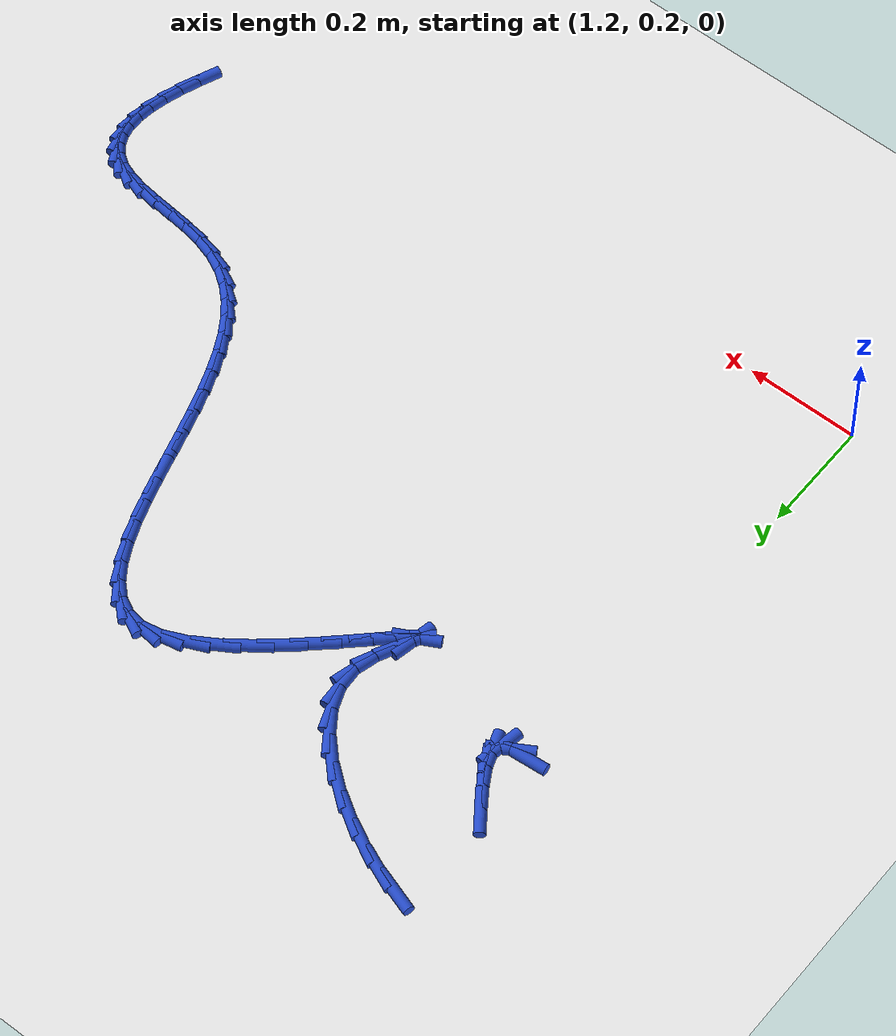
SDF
<sdf version="1.6">
 <world name="default">
  <model name="ground_plane">
   <static>1</static>
   <link name="link">
    <collision name="collision">
     <geometry><plane><normal>0 0 1</normal><size>100 100</size></plane></geometry>
     <surface><friction><ode><mu>100</mu><mu2>50</mu2></ode></friction></surface>
    </collision>
    <visual name="visual">
     <cast_shadows>0</cast_shadows>
     <geometry><plane><normal>0 0 1</normal><size>100 100</size></plane></geometry>
     <material>
      <script><uri>file://media/materials/scripts/gazebo.material</uri><name>Gazebo/WhiteGlow</name></script>
     </material>
    </visual>
   </link>
  </model>
  <model name="line">
   <link name="link_69">
    <pose>1.2428347581821484 0.9922567316185948 0.01 0 1.57 0.08257701680323852</pose>
    <collision name="collision">
     <geometry><cylinder><radius>0.01</radius><length>0.08</length></cylinder></geometry>
    </collision>
    <visual name="visual">
     <material>
      <script><name>Gazebo/Blue</name><uri>file://media/materials/scripts/gazebo.material</uri></script>
     </material>
     <geometry><cylinder><radius>0.01</radius><length>0.08</length></cylinder></geometry>
    </visual>
   </link>
   <link name="link_70">
    <pose>1.2681999254475036 0.9943560854385777 0.01 0 1.57 0.5325036210969829</pose>
    <collision name="collision">
     <geometry><cylinder><radius>0.01</radius><length>0.08</length></cylinder></geometry>
    </collision>
    <visual name="visual">
     <material>
      <script><name>Gazebo/Blue</name><uri>file://media/materials/scripts/gazebo.material</uri></script>
     </material>
     <geometry><cylinder><radius>0.01</radius><length>0.08</length></cylinder></geometry>
    </visual>
   </link>
   <link name="link_71">
    <pose>1.2831922278097092 1.0031908254060604 0.01 0 1.57 1.388331433417792</pose>
    <collision name="collision">
     <geometry><cylinder><radius>0.01</radius><length>0.08</length></cylinder></geometry>
    </collision>
    <visual name="visual">
     <material>
      <script><name>Gazebo/Blue</name><uri>file://media/materials/scripts/gazebo.material</uri></script>
     </material>
     <geometry><cylinder><radius>0.01</radius><length>0.08</length></cylinder></geometry>
    </visual>
   </link>
   <link name="link_72">
    <pose>1.2862476595654497 1.0197498883006302 0.01 0 1.57 -1.2283095166381375</pose>
    <collision name="collision">
     <geometry><cylinder><radius>0.01</radius><length>0.08</length></cylinder></geometry>
    </collision>
    <visual name="visual">
     <material>
      <script><name>Gazebo/Blue</name><uri>file://media/materials/scripts/gazebo.material</uri></script>
     </material>
     <geometry><cylinder><radius>0.01</radius><length>0.08</length></cylinder></geometry>
    </visual>
   </link>
   <link name="link_73">
    <pose>1.27765029555459 1.0438633912976116 0.01 0 1.57 -1.0427344320611702</pose>
    <collision name="collision">
     <geometry><cylinder><radius>0.01</radius><length>0.08</length></cylinder></geometry>
    </collision>
    <visual name="visual">
     <material>
      <script><name>Gazebo/Blue</name><uri>file://media/materials/scripts/gazebo.material</uri></script>
     </material>
     <geometry><cylinder><radius>0.01</radius><length>0.08</length></cylinder></geometry>
    </visual>
   </link>
   <link name="link_74">
    <pose>1.2601954882854902 1.073786781136706 0.01 0 1.57 -0.9675560972324837</pose>
    <collision name="collision">
     <geometry><cylinder><radius>0.01</radius><length>0.08</length></cylinder></geometry>
    </collision>
    <visual name="visual">
     <material>
      <script><name>Gazebo/Blue</name><uri>file://media/materials/scripts/gazebo.material</uri></script>
     </material>
     <geometry><cylinder><radius>0.01</radius><length>0.08</length></cylinder></geometry>
    </visual>
   </link>
   <link name="link_75">
    <pose>1.2368580245773737 1.1076629921469003 0.01 0 1.57 -0.9404761779829854</pose>
    <collision name="collision">
     <geometry><cylinder><radius>0.01</radius><length>0.08</length></cylinder></geometry>
    </collision>
    <visual name="visual">
     <material>
      <script><name>Gazebo/Blue</name><uri>file://media/materials/scripts/gazebo.material</uri></script>
     </material>
     <geometry><cylinder><radius>0.01</radius><length>0.08</length></cylinder></geometry>
    </visual>
   </link>
   <link name="link_85">
    <pose>1.2537973597139507 1.2939719448606635 0.01 0 1.57 -0.3130819134059144</pose>
    <collision name="collision">
     <geometry><cylinder><radius>0.01</radius><length>0.08</length></cylinder></geometry>
    </collision>
    <visual name="visual">
     <material>
      <script><name>Gazebo/Blue</name><uri>file://media/materials/scripts/gazebo.material</uri></script>
     </material>
     <geometry><cylinder><radius>0.01</radius><length>0.08</length></cylinder></geometry>
    </visual>
   </link>
   <link name="link_86">
    <pose>1.2971770644591876 1.2799286754885206 0.01 0 1.57 -0.3968008241083376</pose>
    <collision name="collision">
     <geometry><cylinder><radius>0.01</radius><length>0.08</length></cylinder></geometry>
    </collision>
    <visual name="visual">
     <material>
      <script><name>Gazebo/Blue</name><uri>file://media/materials/scripts/gazebo.material</uri></script>
     </material>
     <geometry><cylinder><radius>0.01</radius><length>0.08</length></cylinder></geometry>
    </visual>
   </link>
   <link name="link_87">
    <pose>1.3424774776937736 1.2609465675457803 0.01 0 1.57 -0.47733820819758177</pose>
    <collision name="collision">
     <geometry><cylinder><radius>0.01</radius><length>0.08</length></cylinder></geometry>
    </collision>
    <visual name="visual">
     <material>
      <script><name>Gazebo/Blue</name><uri>file://media/materials/scripts/gazebo.material</uri></script>
     </material>
     <geometry><cylinder><radius>0.01</radius><length>0.08</length></cylinder></geometry>
    </visual>
   </link>
   <link name="link_88">
    <pose>1.3876873315046026 1.2375625715185823 0.01 0 1.57 -0.5636944518583573</pose>
    <collision name="collision">
     <geometry><cylinder><radius>0.01</radius><length>0.08</length></cylinder></geometry>
    </collision>
    <visual name="visual">
     <material>
      <script><name>Gazebo/Blue</name><uri>file://media/materials/scripts/gazebo.material</uri></script>
     </material>
     <geometry><cylinder><radius>0.01</radius><length>0.08</length></cylinder></geometry>
    </visual>
   </link>
   <link name="link_89">
    <pose>1.4307953579785695 1.2103136378930681 0.01 0 1.57 -0.6649861508194003</pose>
    <collision name="collision">
     <geometry><cylinder><radius>0.01</radius><length>0.08</length></cylinder></geometry>
    </collision>
    <visual name="visual">
     <material>
      <script><name>Gazebo/Blue</name><uri>file://media/materials/scripts/gazebo.material</uri></script>
     </material>
     <geometry><cylinder><radius>0.01</radius><length>0.08</length></cylinder></geometry>
    </visual>
   </link>
   <link name="link_90">
    <pose>1.4697902892025696 1.1797367171553783 0.01 0 1.57 -0.7929070859062343</pose>
    <collision name="collision">
     <geometry><cylinder><radius>0.01</radius><length>0.08</length></cylinder></geometry>
    </collision>
    <visual name="visual">
     <material>
      <script><name>Gazebo/Blue</name><uri>file://media/materials/scripts/gazebo.material</uri></script>
     </material>
     <geometry><cylinder><radius>0.01</radius><length>0.08</length></cylinder></geometry>
    </visual>
   </link>
   <link name="link_91">
    <pose>1.5026608572634965 1.1463687597916539 0.01 0 1.57 -0.9638577777320135</pose>
    <collision name="collision">
     <geometry><cylinder><radius>0.01</radius><length>0.08</length></cylinder></geometry>
    </collision>
    <visual name="visual">
     <material>
      <script><name>Gazebo/Blue</name><uri>file://media/materials/scripts/gazebo.material</uri></script>
     </material>
     <geometry><cylinder><radius>0.01</radius><length>0.08</length></cylinder></geometry>
    </visual>
   </link>
   <link name="link_92">
    <pose>1.5273957942482457 1.1107467162880347 0.01 0 1.57 -1.198341623836617</pose>
    <collision name="collision">
     <geometry><cylinder><radius>0.01</radius><length>0.08</length></cylinder></geometry>
    </collision>
    <visual name="visual">
     <material>
      <script><name>Gazebo/Blue</name><uri>file://media/materials/scripts/gazebo.material</uri></script>
     </material>
     <geometry><cylinder><radius>0.01</radius><length>0.08</length></cylinder></geometry>
    </visual>
   </link>
   <link name="link_93">
    <pose>1.541983832243711 1.0734075371306615 0.01 0 1.57 -1.507797995032454</pose>
    <collision name="collision">
     <geometry><cylinder><radius>0.01</radius><length>0.08</length></cylinder></geometry>
    </collision>
    <visual name="visual">
     <material>
      <script><name>Gazebo/Blue</name><uri>file://media/materials/scripts/gazebo.material</uri></script>
     </material>
     <geometry><cylinder><radius>0.01</radius><length>0.08</length></cylinder></geometry>
    </visual>
   </link>
   <link name="link_94">
    <pose>1.5444137033367882 1.0348881728056756 0.01 0 1.57 1.3101527360664116</pose>
    <collision name="collision">
     <geometry><cylinder><radius>0.01</radius><length>0.08</length></cylinder></geometry>
    </collision>
    <visual name="visual">
     <material>
      <script><name>Gazebo/Blue</name><uri>file://media/materials/scripts/gazebo.material</uri></script>
     </material>
     <geometry><cylinder><radius>0.01</radius><length>0.08</length></cylinder></geometry>
    </visual>
   </link>
   <link name="link_95">
    <pose>1.5341527423039105 0.9964159354872025 0.01 0 1.57 1.1289591981776157</pose>
    <collision name="collision">
     <geometry><cylinder><radius>0.01</radius><length>0.08</length></cylinder></geometry>
    </collision>
    <visual name="visual">
     <material>
      <script><name>Gazebo/Blue</name><uri>file://media/materials/scripts/gazebo.material</uri></script>
     </material>
     <geometry><cylinder><radius>0.01</radius><length>0.08</length></cylinder></geometry>
    </visual>
   </link>
   <link name="link_96">
    <pose>1.51822646389464 0.9627470622737311 0.01 0 1.57 1.084144182039346</pose>
    <collision name="collision">
     <geometry><cylinder><radius>0.01</radius><length>0.08</length></cylinder></geometry>
    </collision>
    <visual name="visual">
     <material>
      <script><name>Gazebo/Blue</name><uri>file://media/materials/scripts/gazebo.material</uri></script>
     </material>
     <geometry><cylinder><radius>0.01</radius><length>0.08</length></cylinder></geometry>
    </visual>
   </link>
   <link name="link_97">
    <pose>1.5060629221916781 0.9397577484750823 0.01 0 1.57 1.3739925579358814</pose>
    <collision name="collision">
     <geometry><cylinder><radius>0.01</radius><length>0.08</length></cylinder></geometry>
    </collision>
    <visual name="visual">
     <material>
      <script><name>Gazebo/Blue</name><uri>file://media/materials/scripts/gazebo.material</uri></script>
     </material>
     <geometry><cylinder><radius>0.01</radius><length>0.08</length></cylinder></geometry>
    </visual>
   </link>
   <link name="link_98">
    <pose>1.5043685981835984 0.931259981235473 0.01 0 1.57 0.48776626435027004</pose>
    <collision name="collision">
     <geometry><cylinder><radius>0.01</radius><length>0.08</length></cylinder></geometry>
    </collision>
    <visual name="visual">
     <material>
      <script><name>Gazebo/Blue</name><uri>file://media/materials/scripts/gazebo.material</uri></script>
     </material>
     <geometry><cylinder><radius>0.01</radius><length>0.08</length></cylinder></geometry>
    </visual>
   </link>
   <link name="link_99">
    <pose>1.5128598470940262 0.9357647782766085 0.01 0 1.57 0.7205764994888815</pose>
    <collision name="collision">
     <geometry><cylinder><radius>0.01</radius><length>0.08</length></cylinder></geometry>
    </collision>
    <visual name="visual">
     <material>
      <script><name>Gazebo/Blue</name><uri>file://media/materials/scripts/gazebo.material</uri></script>
     </material>
     <geometry><cylinder><radius>0.01</radius><length>0.08</length></cylinder></geometry>
    </visual>
   </link>
   <link name="link_100">
    <pose>1.530146801511136 0.9509442521899855 0.01 0 1.57 0.7612105965452197</pose>
    <collision name="collision">
     <geometry><cylinder><radius>0.01</radius><length>0.08</length></cylinder></geometry>
    </collision>
    <visual name="visual">
     <material>
      <script><name>Gazebo/Blue</name><uri>file://media/materials/scripts/gazebo.material</uri></script>
     </material>
     <geometry><cylinder><radius>0.01</radius><length>0.08</length></cylinder></geometry>
    </visual>
   </link>
   <link name="link_101">
    <pose>1.5548395940231026 0.9744705155671014 0.01 0 1.57 0.7660889968068556</pose>
    <collision name="collision">
     <geometry><cylinder><radius>0.01</radius><length>0.08</length></cylinder></geometry>
    </collision>
    <visual name="visual">
     <material>
      <script><name>Gazebo/Blue</name><uri>file://media/materials/scripts/gazebo.material</uri></script>
     </material>
     <geometry><cylinder><radius>0.01</radius><length>0.08</length></cylinder></geometry>
    </visual>
   </link>
   <link name="link_102">
    <pose>1.5855483572181006 1.0040156809994534 0.01 0 1.57 0.754801700875831</pose>
    <collision name="collision">
     <geometry><cylinder><radius>0.01</radius><length>0.08</length></cylinder></geometry>
    </collision>
    <visual name="visual">
     <material>
      <script><name>Gazebo/Blue</name><uri>file://media/materials/scripts/gazebo.material</uri></script>
     </material>
     <geometry><cylinder><radius>0.01</radius><length>0.08</length></cylinder></geometry>
    </visual>
   </link>
   <link name="link_103">
    <pose>1.620883223684306 1.0372518610785395 0.01 0 1.57 0.731169944931522</pose>
    <collision name="collision">
     <geometry><cylinder><radius>0.01</radius><length>0.08</length></cylinder></geometry>
    </collision>
    <visual name="visual">
     <material>
      <script><name>Gazebo/Blue</name><uri>file://media/materials/scripts/gazebo.material</uri></script>
     </material>
     <geometry><cylinder><radius>0.01</radius><length>0.08</length></cylinder></geometry>
    </visual>
   </link>
   <link name="link_104">
    <pose>1.659454326009893 1.0718511683958565 0.01 0 1.57 0.6940563033619193</pose>
    <collision name="collision">
     <geometry><cylinder><radius>0.01</radius><length>0.08</length></cylinder></geometry>
    </collision>
    <visual name="visual">
     <material>
      <script><name>Gazebo/Blue</name><uri>file://media/materials/scripts/gazebo.material</uri></script>
     </material>
     <geometry><cylinder><radius>0.01</radius><length>0.08</length></cylinder></geometry>
    </visual>
   </link>
   <link name="link_105">
    <pose>1.6998717967830375 1.1054857155429019 0.01 0 1.57 0.6385730120476983</pose>
    <collision name="collision">
     <geometry><cylinder><radius>0.01</radius><length>0.08</length></cylinder></geometry>
    </collision>
    <visual name="visual">
     <material>
      <script><name>Gazebo/Blue</name><uri>file://media/materials/scripts/gazebo.material</uri></script>
     </material>
     <geometry><cylinder><radius>0.01</radius><length>0.08</length></cylinder></geometry>
    </visual>
   </link>
   <link name="link_106">
    <pose>1.7407457685919134 1.135827615111173 0.01 0 1.57 0.5542392155828232</pose>
    <collision name="collision">
     <geometry><cylinder><radius>0.01</radius><length>0.08</length></cylinder></geometry>
    </collision>
    <visual name="visual">
     <material>
      <script><name>Gazebo/Blue</name><uri>file://media/materials/scripts/gazebo.material</uri></script>
     </material>
     <geometry><cylinder><radius>0.01</radius><length>0.08</length></cylinder></geometry>
    </visual>
   </link>
   <link name="link_107">
    <pose>1.7806863740246957 1.1605489796921666 0.01 0 1.57 0.41942485988430533</pose>
    <collision name="collision">
     <geometry><cylinder><radius>0.01</radius><length>0.08</length></cylinder></geometry>
    </collision>
    <visual name="visual">
     <material>
      <script><name>Gazebo/Blue</name><uri>file://media/materials/scripts/gazebo.material</uri></script>
     </material>
     <geometry><cylinder><radius>0.01</radius><length>0.08</length></cylinder></geometry>
    </visual>
   </link>
   <link name="link_108">
    <pose>1.8183037456695597 1.1773219218773807 0.01 0 1.57 0.1918120776417105</pose>
    <collision name="collision">
     <geometry><cylinder><radius>0.01</radius><length>0.08</length></cylinder></geometry>
    </collision>
    <visual name="visual">
     <material>
      <script><name>Gazebo/Blue</name><uri>file://media/materials/scripts/gazebo.material</uri></script>
     </material>
     <geometry><cylinder><radius>0.01</radius><length>0.08</length></cylinder></geometry>
    </visual>
   </link>
   <link name="link_109">
    <pose>1.852257277902108 1.1839156841033498 0.01 0 1.57 -0.1330411640508145</pose>
    <collision name="collision">
     <geometry><cylinder><radius>0.01</radius><length>0.08</length></cylinder></geometry>
    </collision>
    <visual name="visual">
     <material>
      <script><name>Gazebo/Blue</name><uri>file://media/materials/scripts/gazebo.material</uri></script>
     </material>
     <geometry><cylinder><radius>0.01</radius><length>0.08</length></cylinder></geometry>
    </visual>
   </link>
   <link name="link_110">
    <pose>1.8821286321843054 1.1799179499119241 0.01 0 1.57 -0.4725618219807806</pose>
    <collision name="collision">
     <geometry><cylinder><radius>0.01</radius><length>0.08</length></cylinder></geometry>
    </collision>
    <visual name="visual">
     <material>
      <script><name>Gazebo/Blue</name><uri>file://media/materials/scripts/gazebo.material</uri></script>
     </material>
     <geometry><cylinder><radius>0.01</radius><length>0.08</length></cylinder></geometry>
    </visual>
   </link>
   <link name="link_111">
    <pose>1.9083179294832846 1.1665301657442795 0.01 0 1.57 -0.7535709730916261</pose>
    <collision name="collision">
     <geometry><cylinder><radius>0.01</radius><length>0.08</length></cylinder></geometry>
    </collision>
    <visual name="visual">
     <material>
      <script><name>Gazebo/Blue</name><uri>file://media/materials/scripts/gazebo.material</uri></script>
     </material>
     <geometry><cylinder><radius>0.01</radius><length>0.08</length></cylinder></geometry>
    </visual>
   </link>
   <link name="link_112">
    <pose>1.9312536981915929 1.1450097891806943 0.01 0 1.57 -0.9545631482177455</pose>
    <collision name="collision">
     <geometry><cylinder><radius>0.01</radius><length>0.08</length></cylinder></geometry>
    </collision>
    <visual name="visual">
     <material>
      <script><name>Gazebo/Blue</name><uri>file://media/materials/scripts/gazebo.material</uri></script>
     </material>
     <geometry><cylinder><radius>0.01</radius><length>0.08</length></cylinder></geometry>
    </visual>
   </link>
   <link name="link_113">
    <pose>1.9513644667017713 1.116614277801446 0.01 0 1.57 -1.0906422433464202</pose>
    <collision name="collision">
     <geometry><cylinder><radius>0.01</radius><length>0.08</length></cylinder></geometry>
    </collision>
    <visual name="visual">
     <material>
      <script><name>Gazebo/Blue</name><uri>file://media/materials/scripts/gazebo.material</uri></script>
     </material>
     <geometry><cylinder><radius>0.01</radius><length>0.08</length></cylinder></geometry>
    </visual>
   </link>
   <link name="link_114">
    <pose>1.969078763406368 1.0826010891868116 0.01 0 1.57 -1.1814033992391835</pose>
    <collision name="collision">
     <geometry><cylinder><radius>0.01</radius><length>0.08</length></cylinder></geometry>
    </collision>
    <visual name="visual">
     <material>
      <script><name>Gazebo/Blue</name><uri>file://media/materials/scripts/gazebo.material</uri></script>
     </material>
     <geometry><cylinder><radius>0.01</radius><length>0.08</length></cylinder></geometry>
    </visual>
   </link>
   <link name="link_115">
    <pose>1.984825116697925 1.0442276809170685 0.01 0 1.57 -1.240789453647758</pose>
    <collision name="collision">
     <geometry><cylinder><radius>0.01</radius><length>0.08</length></cylinder></geometry>
    </collision>
    <visual name="visual">
     <material>
      <script><name>Gazebo/Blue</name><uri>file://media/materials/scripts/gazebo.material</uri></script>
     </material>
     <geometry><cylinder><radius>0.01</radius><length>0.08</length></cylinder></geometry>
    </visual>
   </link>
   <link name="link_116">
    <pose>1.9990320549689875 1.0027515105724942 0.01 0 1.57 -1.2772314173591013</pose>
    <collision name="collision">
     <geometry><cylinder><radius>0.01</radius><length>0.08</length></cylinder></geometry>
    </collision>
    <visual name="visual">
     <material>
      <script><name>Gazebo/Blue</name><uri>file://media/materials/scripts/gazebo.material</uri></script>
     </material>
     <geometry><cylinder><radius>0.01</radius><length>0.08</length></cylinder></geometry>
    </visual>
   </link>
   <link name="link_117">
    <pose>2.0121281066121006 0.9594300357333667 0.01 0 1.57 -1.295274535721464</pose>
    <collision name="collision">
     <geometry><cylinder><radius>0.01</radius><length>0.08</length></cylinder></geometry>
    </collision>
    <visual name="visual">
     <material>
      <script><name>Gazebo/Blue</name><uri>file://media/materials/scripts/gazebo.material</uri></script>
     </material>
     <geometry><cylinder><radius>0.01</radius><length>0.08</length></cylinder></geometry>
    </visual>
   </link>
   <link name="link_118">
    <pose>2.0245418000198088 0.9155207139799626 0.01 0 1.57 -1.296667593730577</pose>
    <collision name="collision">
     <geometry><cylinder><radius>0.01</radius><length>0.08</length></cylinder></geometry>
    </collision>
    <visual name="visual">
     <material>
      <script><name>Gazebo/Blue</name><uri>file://media/materials/scripts/gazebo.material</uri></script>
     </material>
     <geometry><cylinder><radius>0.01</radius><length>0.08</length></cylinder></geometry>
    </visual>
   </link>
   <link name="link_119">
    <pose>2.0367015572056553 0.8722795982079948 0.01 0 1.57 -1.283038141828661</pose>
    <collision name="collision">
     <geometry><cylinder><radius>0.01</radius><length>0.08</length></cylinder></geometry>
    </collision>
    <visual name="visual">
     <material>
      <script><name>Gazebo/Blue</name><uri>file://media/materials/scripts/gazebo.material</uri></script>
     </material>
     <geometry><cylinder><radius>0.01</radius><length>0.08</length></cylinder></geometry>
    </visual>
   </link>
   <link name="link_120">
    <pose>2.049014291143685 0.8306787245837327 0.01 0 1.57 -1.2577051663928749</pose>
    <collision name="collision">
     <geometry><cylinder><radius>0.01</radius><length>0.08</length></cylinder></geometry>
    </collision>
    <visual name="visual">
     <material>
      <script><name>Gazebo/Blue</name><uri>file://media/materials/scripts/gazebo.material</uri></script>
     </material>
     <geometry><cylinder><radius>0.01</radius><length>0.08</length></cylinder></geometry>
    </visual>
   </link>
   <link name="link_121">
    <pose>2.061839427813434 0.7910630858914746 0.01 0 1.57 -1.2196213102389302</pose>
    <collision name="collision">
     <geometry><cylinder><radius>0.01</radius><length>0.08</length></cylinder></geometry>
    </collision>
    <visual name="visual">
     <material>
      <script><name>Gazebo/Blue</name><uri>file://media/materials/scripts/gazebo.material</uri></script>
     </material>
     <geometry><cylinder><radius>0.01</radius><length>0.08</length></cylinder></geometry>
    </visual>
   </link>
   <link name="link_122">
    <pose>2.0755300450586547 0.7536938507743358 0.01 0 1.57 -1.1666690495803806</pose>
    <collision name="collision">
     <geometry><cylinder><radius>0.01</radius><length>0.08</length></cylinder></geometry>
    </collision>
    <visual name="visual">
     <material>
      <script><name>Gazebo/Blue</name><uri>file://media/materials/scripts/gazebo.material</uri></script>
     </material>
     <geometry><cylinder><radius>0.01</radius><length>0.08</length></cylinder></geometry>
    </visual>
   </link>
   <link name="link_123">
    <pose>2.090439220723097 0.718832187875434 0.01 0 1.57 -1.0963801018509653</pose>
    <collision name="collision">
     <geometry><cylinder><radius>0.01</radius><length>0.08</length></cylinder></geometry>
    </collision>
    <visual name="visual">
     <material>
      <script><name>Gazebo/Blue</name><uri>file://media/materials/scripts/gazebo.material</uri></script>
     </material>
     <geometry><cylinder><radius>0.01</radius><length>0.08</length></cylinder></geometry>
    </visual>
   </link>
   <link name="link_124">
    <pose>2.1069200326505135 0.6867392658378835 0.01 0 1.57 -1.0062526839646049</pose>
    <collision name="collision">
     <geometry><cylinder><radius>0.01</radius><length>0.08</length></cylinder></geometry>
    </collision>
    <visual name="visual">
     <material>
      <script><name>Gazebo/Blue</name><uri>file://media/materials/scripts/gazebo.material</uri></script>
     </material>
     <geometry><cylinder><radius>0.01</radius><length>0.08</length></cylinder></geometry>
    </visual>
   </link>
   <link name="link_125">
    <pose>2.1253255586846564 0.6576762533048018 0.01 0 1.57 -0.8945012112122055</pose>
    <collision name="collision">
     <geometry><cylinder><radius>0.01</radius><length>0.08</length></cylinder></geometry>
    </collision>
    <visual name="visual">
     <material>
      <script><name>Gazebo/Blue</name><uri>file://media/materials/scripts/gazebo.material</uri></script>
     </material>
     <geometry><cylinder><radius>0.01</radius><length>0.08</length></cylinder></geometry>
    </visual>
   </link>
   <link name="link_126">
    <pose>2.146008876669277 0.6319043189193049 0.01 0 1.57 -0.7613657379843615</pose>
    <collision name="collision">
     <geometry><cylinder><radius>0.01</radius><length>0.08</length></cylinder></geometry>
    </collision>
    <visual name="visual">
     <material>
      <script><name>Gazebo/Blue</name><uri>file://media/materials/scripts/gazebo.material</uri></script>
     </material>
     <geometry><cylinder><radius>0.01</radius><length>0.08</length></cylinder></geometry>
    </visual>
   </link>
   <link name="link_127">
    <pose>2.1693230644481254 0.6096846313245088 0.01 0 1.57 -0.6106641350216307</pose>
    <collision name="collision">
     <geometry><cylinder><radius>0.01</radius><length>0.08</length></cylinder></geometry>
    </collision>
    <visual name="visual">
     <material>
      <script><name>Gazebo/Blue</name><uri>file://media/materials/scripts/gazebo.material</uri></script>
     </material>
     <geometry><cylinder><radius>0.01</radius><length>0.08</length></cylinder></geometry>
    </visual>
   </link>
   <link name="link_128">
    <pose>2.1956211998649544 0.5912783591635299 0.01 0 1.57 -0.4504451398154145</pose>
    <collision name="collision">
     <geometry><cylinder><radius>0.01</radius><length>0.08</length></cylinder></geometry>
    </collision>
    <visual name="visual">
     <material>
      <script><name>Gazebo/Blue</name><uri>file://media/materials/scripts/gazebo.material</uri></script>
     </material>
     <geometry><cylinder><radius>0.01</radius><length>0.08</length></cylinder></geometry>
    </visual>
   </link>
   <link name="link_129">
    <pose>2.2252563607635154 0.5769466710794844 0.01 0 1.57 -0.2942833074556881</pose>
    <collision name="collision">
     <geometry><cylinder><radius>0.01</radius><length>0.08</length></cylinder></geometry>
    </collision>
    <visual name="visual">
     <material>
      <script><name>Gazebo/Blue</name><uri>file://media/materials/scripts/gazebo.material</uri></script>
     </material>
     <geometry><cylinder><radius>0.01</radius><length>0.08</length></cylinder></geometry>
    </visual>
   </link>
   <link name="link_130">
    <pose>2.25848784243568 0.5668747565716122 0.01 0 1.57 -0.1803923013384751</pose>
    <collision name="collision">
     <geometry><cylinder><radius>0.01</radius><length>0.08</length></cylinder></geometry>
    </collision>
    <visual name="visual">
     <material>
      <script><name>Gazebo/Blue</name><uri>file://media/materials/scripts/gazebo.material</uri></script>
     </material>
     <geometry><cylinder><radius>0.01</radius><length>0.08</length></cylinder></geometry>
    </visual>
   </link>
   <link name="link_131">
    <pose>2.2944295908473253 0.5603198856116566 0.01 0 1.57 -0.1183931941204613</pose>
    <collision name="collision">
     <geometry><cylinder><radius>0.01</radius><length>0.08</length></cylinder></geometry>
    </collision>
    <visual name="visual">
     <material>
      <script><name>Gazebo/Blue</name><uri>file://media/materials/scripts/gazebo.material</uri></script>
     </material>
     <geometry><cylinder><radius>0.01</radius><length>0.08</length></cylinder></geometry>
    </visual>
   </link>
   <link name="link_132">
    <pose>2.33142956912617 0.5559187572964961 0.01 0 1.57 -0.09920195266443044</pose>
    <collision name="collision">
     <geometry><cylinder><radius>0.01</radius><length>0.08</length></cylinder></geometry>
    </collision>
    <visual name="visual">
     <material>
      <script><name>Gazebo/Blue</name><uri>file://media/materials/scripts/gazebo.material</uri></script>
     </material>
     <geometry><cylinder><radius>0.01</radius><length>0.08</length></cylinder></geometry>
    </visual>
   </link>
   <link name="link_133">
    <pose>2.367821701913912 0.5522966972625127 0.01 0 1.57 -0.12299520885053282</pose>
    <collision name="collision">
     <geometry><cylinder><radius>0.01</radius><length>0.08</length></cylinder></geometry>
    </collision>
    <visual name="visual">
     <material>
      <script><name>Gazebo/Blue</name><uri>file://media/materials/scripts/gazebo.material</uri></script>
     </material>
     <geometry><cylinder><radius>0.01</radius><length>0.08</length></cylinder></geometry>
    </visual>
   </link>
   <link name="link_134">
    <pose>2.4019399138522486 0.5480790311460884 0.01 0 1.57 -0.202243508930593</pose>
    <collision name="collision">
     <geometry><cylinder><radius>0.01</radius><length>0.08</length></cylinder></geometry>
    </collision>
    <visual name="visual">
     <material>
      <script><name>Gazebo/Blue</name><uri>file://media/materials/scripts/gazebo.material</uri></script>
     </material>
     <geometry><cylinder><radius>0.01</radius><length>0.08</length></cylinder></geometry>
    </visual>
   </link>
   <link name="link_135">
    <pose>2.4321181295828795 0.5418910845836057 0.01 0 1.57 -0.36067790133733174</pose>
    <collision name="collision">
     <geometry><cylinder><radius>0.01</radius><length>0.08</length></cylinder></geometry>
    </collision>
    <visual name="visual">
     <material>
      <script><name>Gazebo/Blue</name><uri>file://media/materials/scripts/gazebo.material</uri></script>
     </material>
     <geometry><cylinder><radius>0.01</radius><length>0.08</length></cylinder></geometry>
    </visual>
   </link>
   <link name="link_136">
    <pose>2.4569215659284134 0.5325357989949556 0.01 0 1.57 -0.5818721309829631</pose>
    <collision name="collision">
     <geometry><cylinder><radius>0.01</radius><length>0.08</length></cylinder></geometry>
    </collision>
    <visual name="visual">
     <material>
      <script><name>Gazebo/Blue</name><uri>file://media/materials/scripts/gazebo.material</uri></script>
     </material>
     <geometry><cylinder><radius>0.01</radius><length>0.08</length></cylinder></geometry>
    </visual>
   </link>
   <link name="link_137">
    <pose>2.476235744762887 0.5198300152550728 0.01 0 1.57 -0.8419620039639603</pose>
    <collision name="collision">
     <geometry><cylinder><radius>0.01</radius><length>0.08</length></cylinder></geometry>
    </collision>
    <visual name="visual">
     <material>
      <script><name>Gazebo/Blue</name><uri>file://media/materials/scripts/gazebo.material</uri></script>
     </material>
     <geometry><cylinder><radius>0.01</radius><length>0.08</length></cylinder></geometry>
    </visual>
   </link>
   <link name="link_138">
    <pose>2.4904139454003382 0.5039497783584175 0.01 0 1.57 -1.1089752502840688</pose>
    <collision name="collision">
     <geometry><cylinder><radius>0.01</radius><length>0.08</length></cylinder></geometry>
    </collision>
    <visual name="visual">
     <material>
      <script><name>Gazebo/Blue</name><uri>file://media/materials/scripts/gazebo.material</uri></script>
     </material>
     <geometry><cylinder><radius>0.01</radius><length>0.08</length></cylinder></geometry>
    </visual>
   </link>
   <link name="link_139">
    <pose>2.4998099948149433 0.4850715538631085 0.01 0 1.57 -1.345744320934274</pose>
    <collision name="collision">
     <geometry><cylinder><radius>0.01</radius><length>0.08</length></cylinder></geometry>
    </collision>
    <visual name="visual">
     <material>
      <script><name>Gazebo/Blue</name><uri>file://media/materials/scripts/gazebo.material</uri></script>
     </material>
     <geometry><cylinder><radius>0.01</radius><length>0.08</length></cylinder></geometry>
    </visual>
   </link>
   <link name="link_140">
    <pose>2.5047777199808845 0.4633718073272632 0.01 0 1.57 -1.5341220768184196</pose>
    <collision name="collision">
     <geometry><cylinder><radius>0.01</radius><length>0.08</length></cylinder></geometry>
    </collision>
    <visual name="visual">
     <material>
      <script><name>Gazebo/Blue</name><uri>file://media/materials/scripts/gazebo.material</uri></script>
     </material>
     <geometry><cylinder><radius>0.01</radius><length>0.08</length></cylinder></geometry>
    </visual>
   </link>
   <link name="link_141">
    <pose>2.5056709478723374 0.4390270043089983 0.01 0 1.57 1.4657357030307345</pose>
    <collision name="collision">
     <geometry><cylinder><radius>0.01</radius><length>0.08</length></cylinder></geometry>
    </collision>
    <visual name="visual">
     <material>
      <script><name>Gazebo/Blue</name><uri>file://media/materials/scripts/gazebo.material</uri></script>
     </material>
     <geometry><cylinder><radius>0.01</radius><length>0.08</length></cylinder></geometry>
    </visual>
   </link>
   <link name="link_142">
    <pose>2.502843505463482 0.41221361036643306 0.01 0 1.57 1.3611031650692362</pose>
    <collision name="collision">
     <geometry><cylinder><radius>0.01</radius><length>0.08</length></cylinder></geometry>
    </collision>
    <visual name="visual">
     <material>
      <script><name>Gazebo/Blue</name><uri>file://media/materials/scripts/gazebo.material</uri></script>
     </material>
     <geometry><cylinder><radius>0.01</radius><length>0.08</length></cylinder></geometry>
    </visual>
   </link>
   <link name="link_143">
    <pose>2.496649219728497 0.3831080910576834 0.01 0 1.57 1.284019777036291</pose>
    <collision name="collision">
     <geometry><cylinder><radius>0.01</radius><length>0.08</length></cylinder></geometry>
    </collision>
    <visual name="visual">
     <material>
      <script><name>Gazebo/Blue</name><uri>file://media/materials/scripts/gazebo.material</uri></script>
     </material>
     <geometry><cylinder><radius>0.01</radius><length>0.08</length></cylinder></geometry>
    </visual>
   </link>
   <link name="link_144">
    <pose>2.487441917641562 0.3518869119408691 0.01 0 1.57 1.2271439913173467</pose>
    <collision name="collision">
     <geometry><cylinder><radius>0.01</radius><length>0.08</length></cylinder></geometry>
    </collision>
    <visual name="visual">
     <material>
      <script><name>Gazebo/Blue</name><uri>file://media/materials/scripts/gazebo.material</uri></script>
     </material>
     <geometry><cylinder><radius>0.01</radius><length>0.08</length></cylinder></geometry>
    </visual>
   </link>
   <link name="link_145">
    <pose>2.475575426176854 0.3187265385741059 0.01 0 1.57 1.185298519281647</pose>
    <collision name="collision">
     <geometry><cylinder><radius>0.01</radius><length>0.08</length></cylinder></geometry>
    </collision>
    <visual name="visual">
     <material>
      <script><name>Gazebo/Blue</name><uri>file://media/materials/scripts/gazebo.material</uri></script>
     </material>
     <geometry><cylinder><radius>0.01</radius><length>0.08</length></cylinder></geometry>
    </visual>
   </link>
  </model>
 </world>
</sdf>
